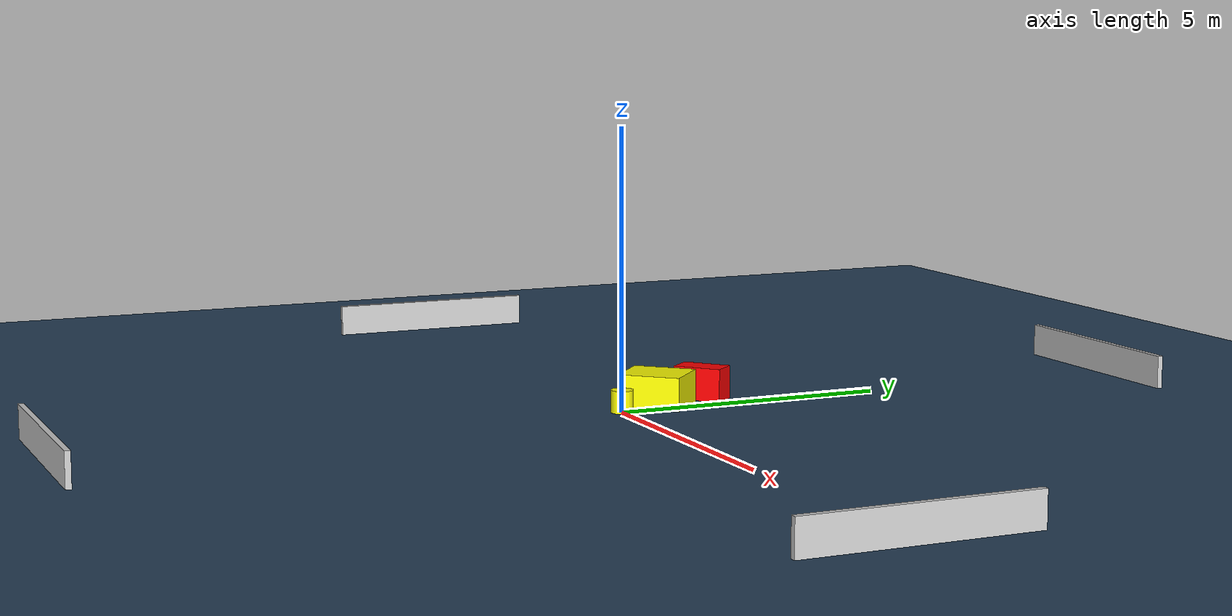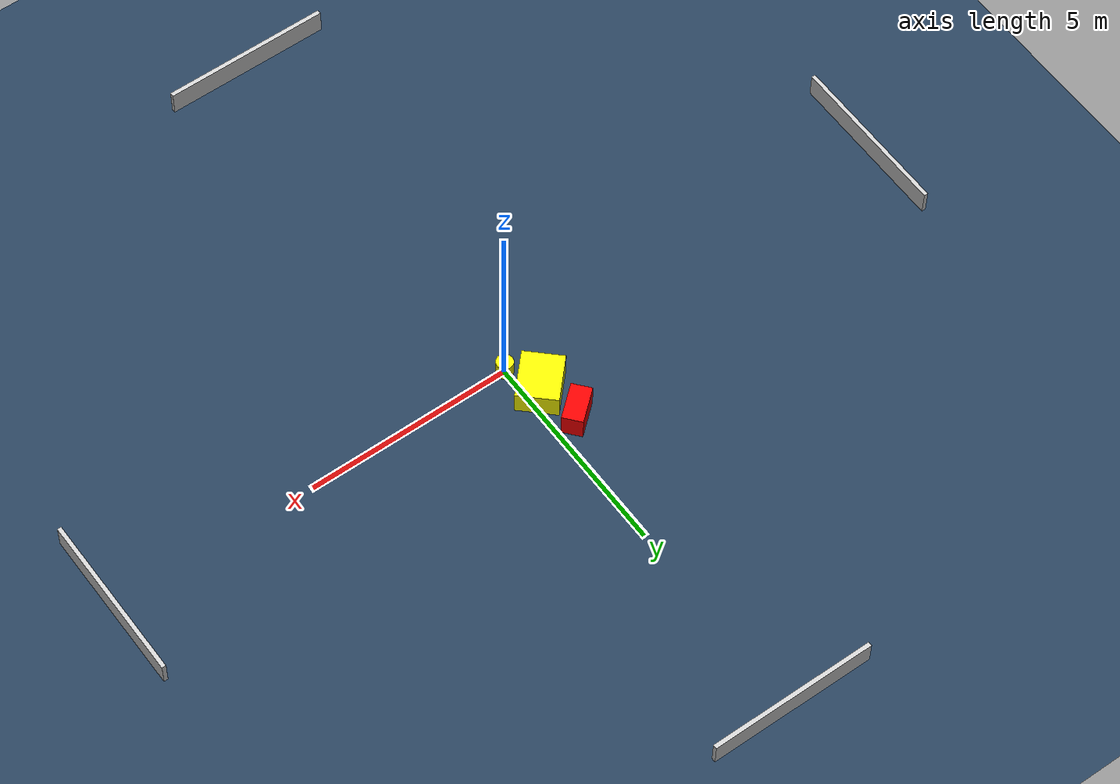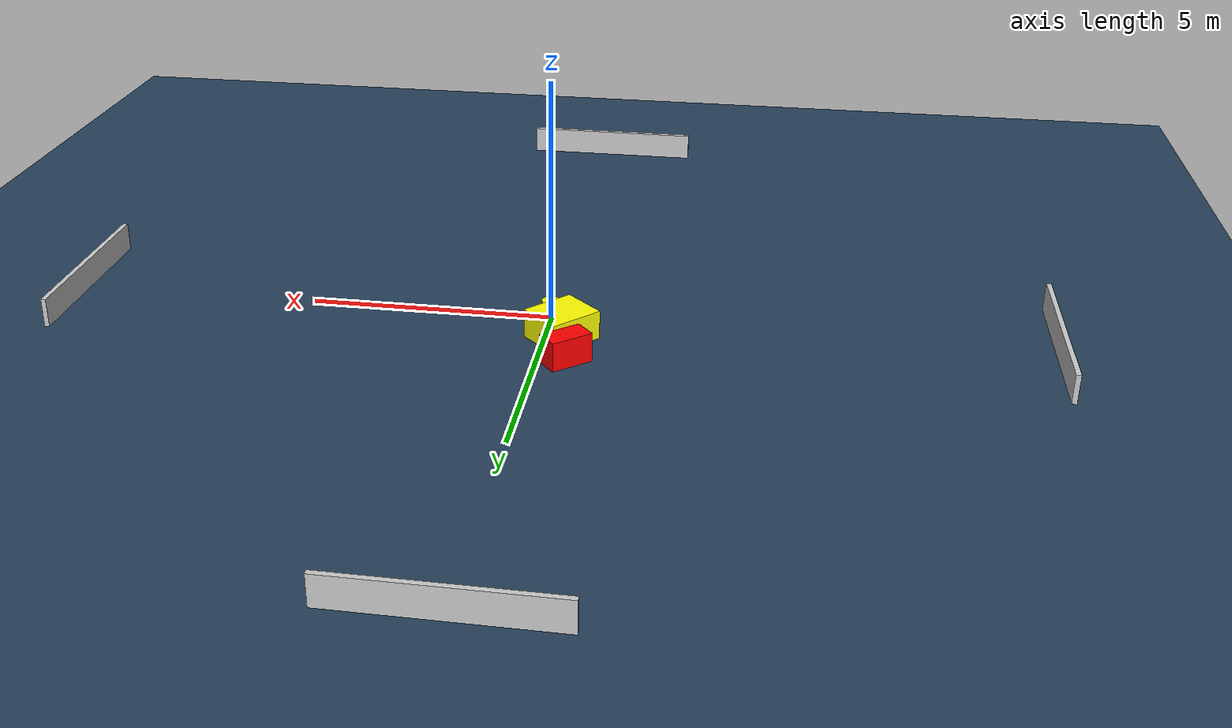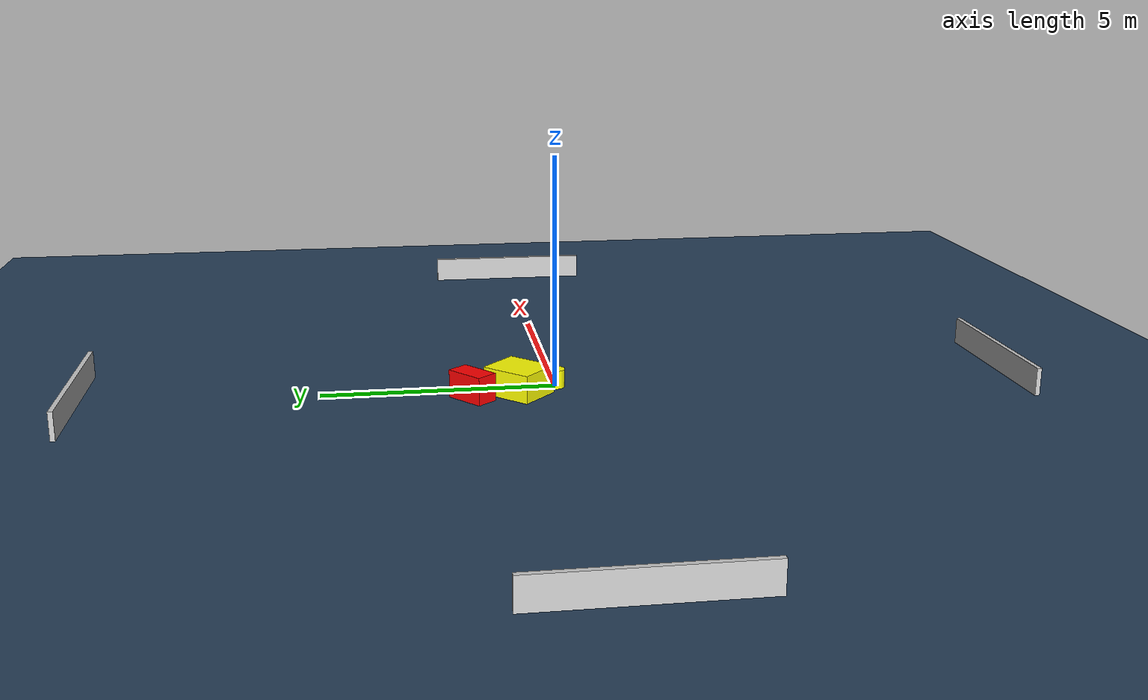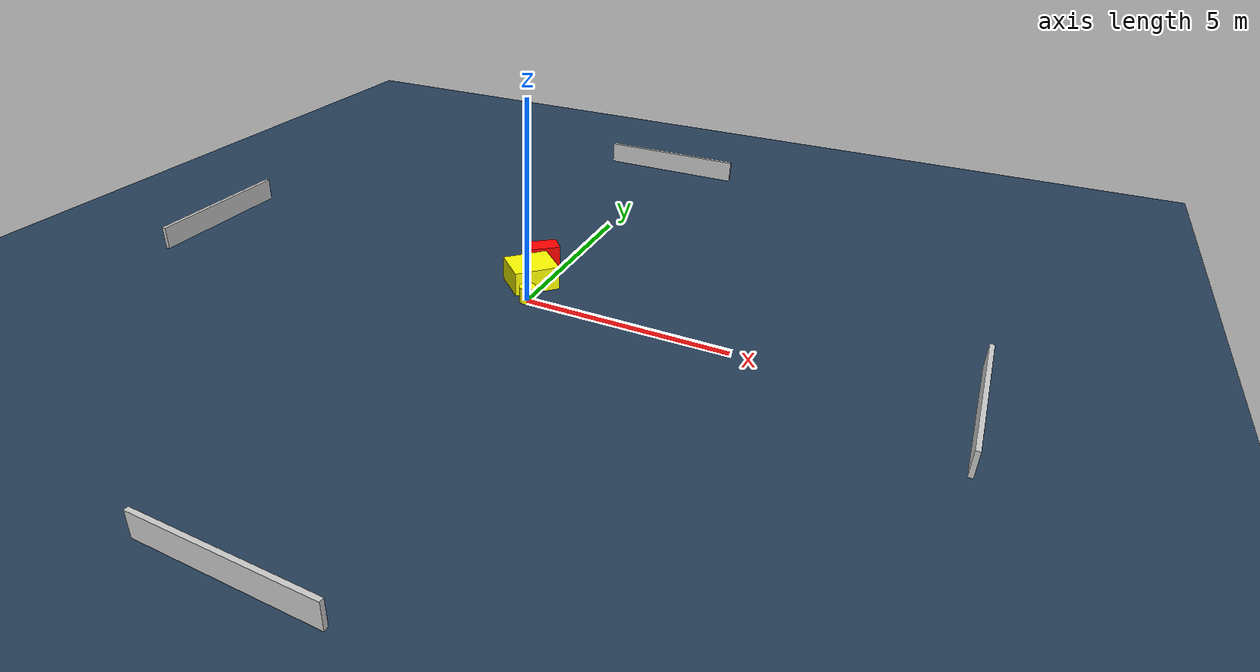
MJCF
<?xml version="1.0" ?>
<mujoco model="generated_environment">
  <option timestep="0.01" integrator="RK4" cone="elliptic"/>
  <default>
    <geom density="1"/>
  </default>
  <asset>
    <texture builtin="gradient" height="3072" name="skybox" rgb1="0.3 0.5 0.7" rgb2="0 0 0" type="skybox" width="512"/>
    <texture builtin="checker" height="300" name="groundplane" rgb1="0.2 0.3 0.4" rgb2="0.1 0.2 0.3" type="2d" width="300"/>
    <material name="groundplane" reflectance="0.2" texrepeat="5 5" texture="groundplane"/>
  </asset>
  <worldbody>
    <light dir="0 0 -1" directional="true" pos="0 0 1.5"/>
    <geom condim="3" friction="0.5 0.005 0.001" material="groundplane" name="floor" pos="0 0 0" size="0 0 0.05" type="plane"/>
    <body name="walls">
      <geom name="wall_1" condim="4" pos="-10.0 0.0 0.3" rgba="0.800000011920929 0.800000011920929 0.800000011920929 1.0" size="0.05 2.0 0.3" type="box"/>
      <geom name="wall_2" condim="4" pos="10.0 0.0 0.3" rgba="0.800000011920929 0.800000011920929 0.800000011920929 1.0" size="0.05 2.0 0.3" type="box"/>
      <geom name="wall_3" condim="4" pos="0.0 -10.0 0.3" rgba="0.800000011920929 0.800000011920929 0.800000011920929 1.0" size="2.0 0.05 0.3" type="box"/>
      <geom name="wall_4" condim="4" pos="0.0 10.0 0.3" rgba="0.800000011920929 0.800000011920929 0.800000011920929 1.0" size="2.0 0.05 0.3" type="box"/>
    </body>
    <body name="robot">
      <joint name="joint_x" type="slide" pos="0 0 0" axis="1 0 0"/>
      <joint name="joint_y" type="slide" pos="0 0 0" axis="0 1 0"/>
      <geom name="robot" type="cylinder" pos="0.0 0.0 0.2" size="0.2 0.2 0.0" mass="5.0" friction="1.0 0.005 0.0001" condim="4" rgba="1.0 1.0 0.0 1.0"/>
    </body>
    <body name="obstacle_1_movable">
      <geom name="obstacle_1_movable" condim="4" pos="-0.3407326935403459 0.82758676208545 0.3" euler="0 0 136.54915664565405" friction="0.0 0.005 0.001" rgba="1.0 1.0 0.0 1.0" size="0.4841660337077479 0.5710216906019723 0.3" type="box" mass="0.1"/>
      <joint type="free"/>
    </body>
    <body name="obstacle_2_static">
      <geom name="obstacle_2_static" condim="4" pos="-0.57329820091014 1.8370178578112712 0.3" euler="0 0 310.3046661432666" friction="0.0 0.005 0.001" rgba="1.0 0.0 0.0 1.0" size="0.24266627708124397 0.4427742438585812 0.3" type="box"/>
    </body>
  </worldbody>
  <actuator>
    <motor name="actuator_x" joint="joint_x" gear="1" ctrlrange="-1 1"/>
    <motor name="actuator_y" joint="joint_y" gear="1" ctrlrange="-1 1"/>
  </actuator>
</mujoco>
